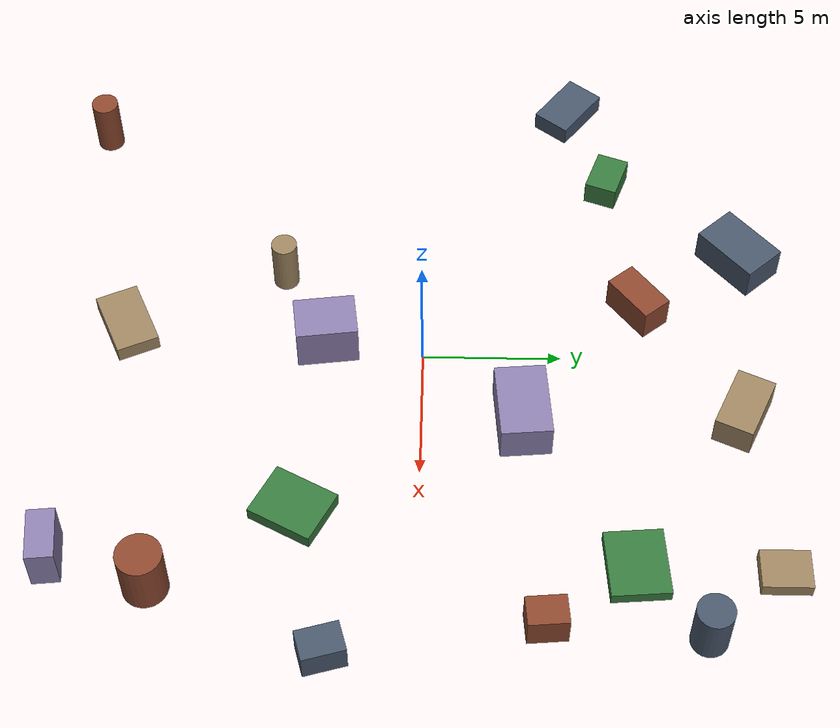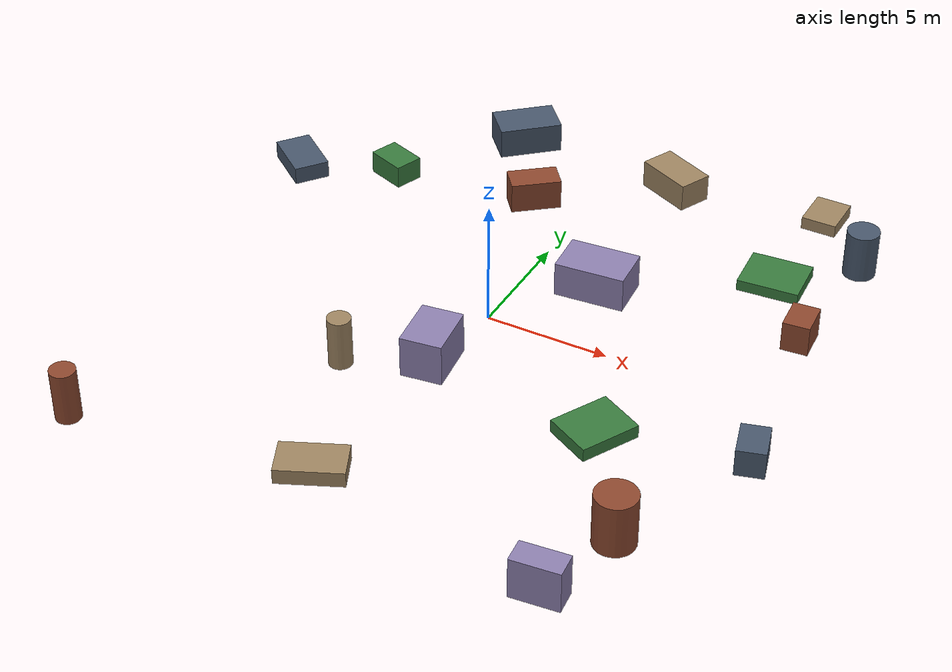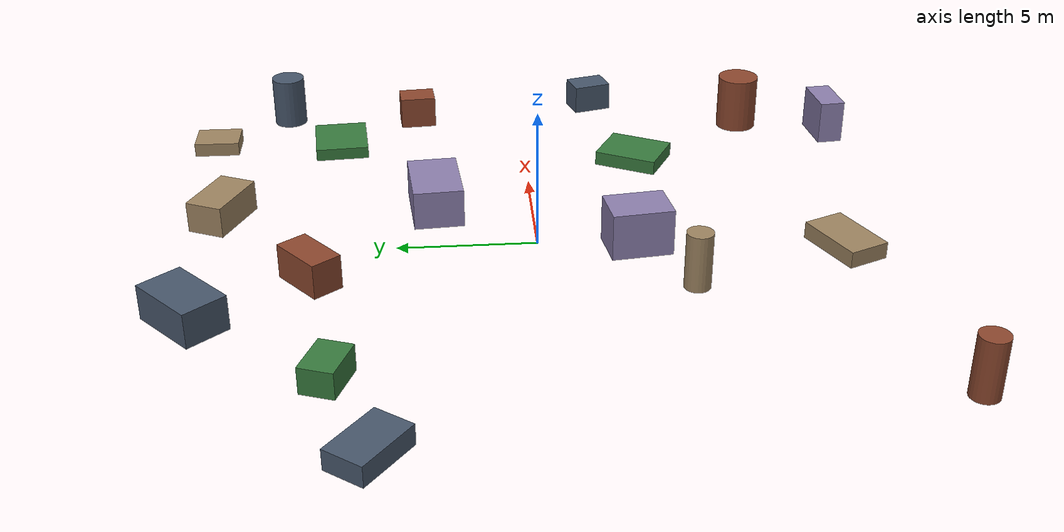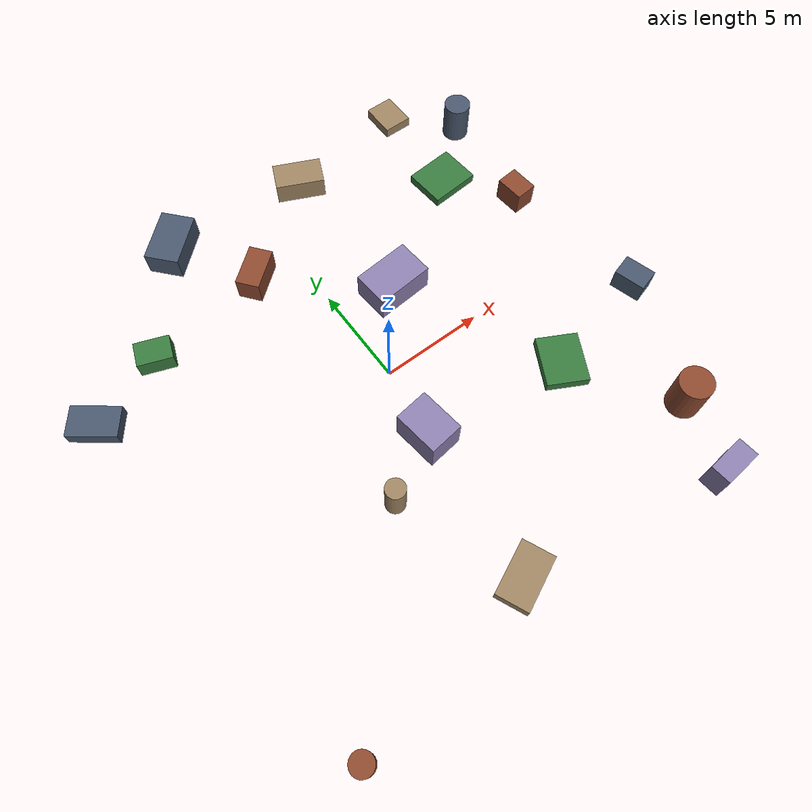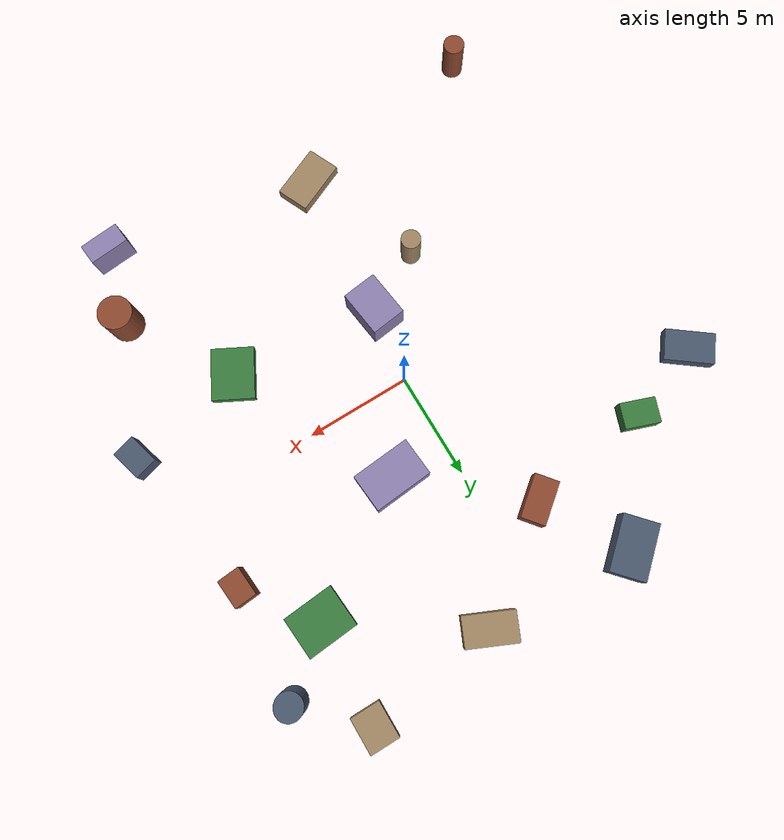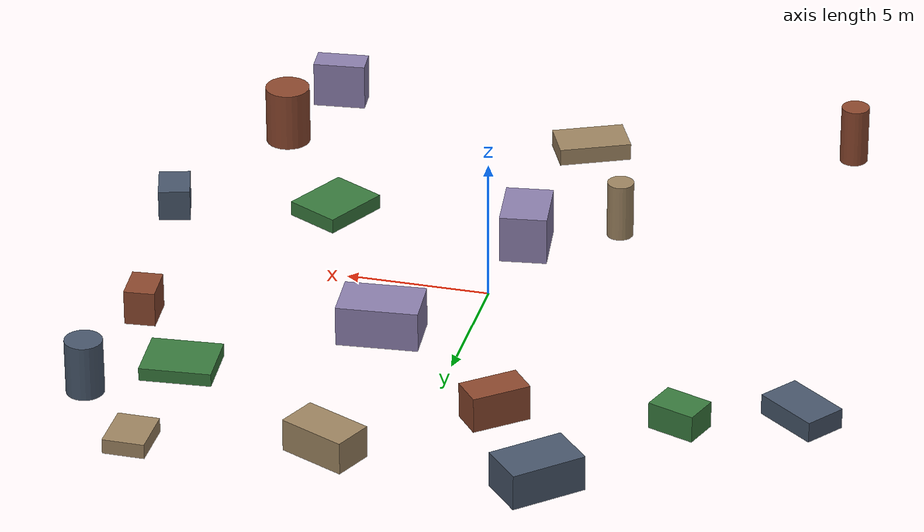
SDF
<sdf version="1.10">
 <world name="robotx_task1_uav_view">
  <gravity>0 0 -9.81</gravity>
  <physics name="physics" type="ode">
   <max_step_size>0.002</max_step_size>
   <real_time_factor>1.0</real_time_factor>
  </physics>
  <scene>
   <ambient>0.20 0.20 0.20 1.0</ambient>
   <background>0.58 0.70 0.88 1.0</background>
   <shadows>true</shadows>
   <grid>false</grid>
  </scene>
  <light name="sun" type="directional">
   <pose>0 0 300 0 0 0</pose>
   <diffuse>0.78 0.78 0.78 1.0</diffuse>
   <specular>0.45 0.45 0.45 1.0</specular>
   <direction>0.20 -0.08 -1.0</direction>
   <attenuation>
    <range>2500</range>
    <constant>0.85</constant>
    <linear>0.001</linear>
    <quadratic>0.00005</quadratic>
   </attenuation>
  </light>
  <plugin filename="gz-sim-physics-system" name="gz::sim::systems::Physics"/>
  <plugin filename="gz-sim-user-commands-system" name="gz::sim::systems::UserCommands"/>
  <plugin filename="gz-sim-scene-broadcaster-system" name="gz::sim::systems::SceneBroadcaster"/>
  <plugin filename="gz-sim-sensors-system" name="gz::sim::systems::Sensors">
   <render_engine>ogre2</render_engine>
  </plugin>
  <model name="scene_clutter_cyl_000">
   <static>true</static>
   <pose>-3.466 -5.137 1.083 0 0 -0.138881</pose>
   <link name="link">
    <visual name="v">
     <geometry><cylinder><radius>0.466</radius><length>2.066</length></cylinder></geometry>
     <material><ambient>0.45 0.38 0.32 1.0</ambient><diffuse>0.62 0.52 0.38 1.0</diffuse></material>
    </visual>
   </link>
  </model>
  <model name="scene_clutter_box_001">
   <static>true</static>
   <pose>-12.014 5.576 0.381 0 0 2.491734</pose>
   <link name="link">
    <visual name="v">
     <geometry><box><size>2.336 1.464 0.721</size></box></geometry>
     <material><ambient>0.18 0.22 0.28 1.0</ambient><diffuse>0.28 0.34 0.42 1.0</diffuse></material>
    </visual>
   </link>
  </model>
  <model name="scene_clutter_box_002">
   <static>true</static>
   <pose>-2.190 7.859 0.648 0 0 -2.464398</pose>
   <link name="link">
    <visual name="v">
     <geometry><box><size>2.058 1.156 1.256</size></box></geometry>
     <material><ambient>0.35 0.16 0.12 1.0</ambient><diffuse>0.55 0.28 0.18 1.0</diffuse></material>
    </visual>
   </link>
  </model>
  <model name="scene_clutter_box_003">
   <static>true</static>
   <pose>8.732 7.339 0.251 0 0 0.079652</pose>
   <link name="link">
    <visual name="v">
     <geometry><box><size>2.466 2.053 0.462</size></box></geometry>
     <material><ambient>0.12 0.30 0.14 1.0</ambient><diffuse>0.22 0.48 0.24 1.0</diffuse></material>
    </visual>
   </link>
  </model>
  <model name="scene_clutter_box_004">
   <static>true</static>
   <pose>8.693 -12.470 0.857 0 0 -1.471298</pose>
   <link name="link">
    <visual name="v">
     <geometry><box><size>0.978 1.878 1.674</size></box></geometry>
     <material><ambient>0.40 0.35 0.50 1.0</ambient><diffuse>0.55 0.50 0.68 1.0</diffuse></material>
    </visual>
   </link>
  </model>
  <model name="scene_clutter_box_005">
   <static>true</static>
   <pose>-1.116 -10.815 0.326 0 0 -2.716392</pose>
   <link name="link">
    <visual name="v">
     <geometry><box><size>2.584 1.560 0.612</size></box></geometry>
     <material><ambient>0.45 0.38 0.32 1.0</ambient><diffuse>0.62 0.52 0.38 1.0</diffuse></material>
    </visual>
   </link>
  </model>
  <model name="scene_clutter_box_006">
   <static>true</static>
   <pose>12.181 -3.066 0.579 0 0 -1.290573</pose>
   <link name="link">
    <visual name="v">
     <geometry><box><size>1.525 1.111 1.117</size></box></geometry>
     <material><ambient>0.18 0.22 0.28 1.0</ambient><diffuse>0.28 0.34 0.42 1.0</diffuse></material>
    </visual>
   </link>
  </model>
  <model name="scene_clutter_box_007">
   <static>true</static>
   <pose>11.005 4.253 0.640 0 0 0.085734</pose>
   <link name="link">
    <visual name="v">
     <geometry><box><size>1.068 1.404 1.241</size></box></geometry>
     <material><ambient>0.35 0.16 0.12 1.0</ambient><diffuse>0.55 0.28 0.18 1.0</diffuse></material>
    </visual>
   </link>
  </model>
  <model name="scene_clutter_box_008">
   <static>true</static>
   <pose>-8.220 6.957 0.494 0 0 1.225276</pose>
   <link name="link">
    <visual name="v">
     <geometry><box><size>1.197 1.673 0.947</size></box></geometry>
     <material><ambient>0.12 0.30 0.14 1.0</ambient><diffuse>0.22 0.48 0.24 1.0</diffuse></material>
    </visual>
   </link>
  </model>
  <model name="scene_clutter_box_009">
   <static>true</static>
   <pose>2.822 3.577 0.733 0 0 -3.057296</pose>
   <link name="link">
    <visual name="v">
     <geometry><box><size>2.819 1.825 1.426</size></box></geometry>
     <material><ambient>0.40 0.35 0.50 1.0</ambient><diffuse>0.55 0.50 0.68 1.0</diffuse></material>
    </visual>
   </link>
  </model>
  <model name="scene_clutter_box_010">
   <static>true</static>
   <pose>8.919 12.277 0.279 0 0 1.569696</pose>
   <link name="link">
    <visual name="v">
     <geometry><box><size>1.732 1.433 0.519</size></box></geometry>
     <material><ambient>0.45 0.38 0.32 1.0</ambient><diffuse>0.62 0.52 0.38 1.0</diffuse></material>
    </visual>
   </link>
  </model>
  <model name="scene_clutter_box_011">
   <static>true</static>
   <pose>-4.562 11.725 0.646 0 0 2.301226</pose>
   <link name="link">
    <visual name="v">
     <geometry><box><size>1.668 2.624 1.252</size></box></geometry>
     <material><ambient>0.18 0.22 0.28 1.0</ambient><diffuse>0.28 0.34 0.42 1.0</diffuse></material>
    </visual>
   </link>
  </model>
  <model name="scene_clutter_cyl_012">
   <static>true</static>
   <pose>9.735 -9.041 1.118 0 0 -2.144932</pose>
   <link name="link">
    <visual name="v">
     <geometry><cylinder><radius>0.796</radius><length>2.136</length></cylinder></geometry>
     <material><ambient>0.35 0.16 0.12 1.0</ambient><diffuse>0.55 0.28 0.18 1.0</diffuse></material>
    </visual>
   </link>
  </model>
  <model name="scene_clutter_box_013">
   <static>true</static>
   <pose>6.638 -4.306 0.287 0 0 1.088865</pose>
   <link name="link">
    <visual name="v">
     <geometry><box><size>2.433 2.000 0.535</size></box></geometry>
     <material><ambient>0.12 0.30 0.14 1.0</ambient><diffuse>0.22 0.48 0.24 1.0</diffuse></material>
    </visual>
   </link>
  </model>
  <model name="scene_clutter_box_014">
   <static>true</static>
   <pose>-0.489 -3.497 0.873 0 0 1.700165</pose>
   <link name="link">
    <visual name="v">
     <geometry><box><size>2.215 1.661 1.706</size></box></geometry>
     <material><ambient>0.40 0.35 0.50 1.0</ambient><diffuse>0.55 0.50 0.68 1.0</diffuse></material>
    </visual>
   </link>
  </model>
  <model name="scene_clutter_box_015">
   <static>true</static>
   <pose>2.610 11.367 0.590 0 0 1.145398</pose>
   <link name="link">
    <visual name="v">
     <geometry><box><size>1.403 2.411 1.140</size></box></geometry>
     <material><ambient>0.45 0.38 0.32 1.0</ambient><diffuse>0.62 0.52 0.38 1.0</diffuse></material>
    </visual>
   </link>
  </model>
  <model name="scene_clutter_cyl_016">
   <static>true</static>
   <pose>11.371 9.579 1.034 0 0 0.610374</pose>
   <link name="link">
    <visual name="v">
     <geometry><cylinder><radius>0.648</radius><length>1.967</length></cylinder></geometry>
     <material><ambient>0.18 0.22 0.28 1.0</ambient><diffuse>0.28 0.34 0.42 1.0</diffuse></material>
    </visual>
   </link>
  </model>
  <model name="scene_clutter_cyl_017">
   <static>true</static>
   <pose>-10.399 -12.533 1.116 0 0 -1.141913</pose>
   <link name="link">
    <visual name="v">
     <geometry><cylinder><radius>0.499</radius><length>2.132</length></cylinder></geometry>
     <material><ambient>0.35 0.16 0.12 1.0</ambient><diffuse>0.55 0.28 0.18 1.0</diffuse></material>
    </visual>
   </link>
  </model>
  <model name="uav_dataset_camera">
   <static>false</static>
   <pose>0 0 26 0 0 0</pose>
   <plugin filename="librobotx_overhead_motion_plugin.dylib" name="robotx::OverheadMotionPlugin">
    <radius_x_m>13.81065</radius_x_m>
    <radius_y_m>9.92874</radius_y_m>
    <angular_speed_rad_s>0.081579</angular_speed_rad_s>
    <phase_rad>4.703049</phase_rad>
    <z_wobble_m>0.11448</z_wobble_m>
    <z_wobble_hz>0.06057</z_wobble_hz>
    <z_wobble_phase_rad>4.149280</z_wobble_phase_rad>
   </plugin>
   <link name="camera_link">
    <gravity>false</gravity>
    <sensor name="top_down_rgb" type="camera">
     <always_on>true</always_on>
     <update_rate>20</update_rate>
     <pose>0 0 0 0 1.57079632679 0</pose>
     <camera>
      <horizontal_fov>1.05</horizontal_fov>
      <image><width>1920</width><height>1080</height><format>R8G8B8</format></image>
      <clip><near>0.2</near><far>600</far></clip>
     </camera>
     <topic>/robotx/uav/camera/image_raw</topic>
     <visualize>true</visualize>
    </sensor>
   </link>
  </model>
 </world>
</sdf>
